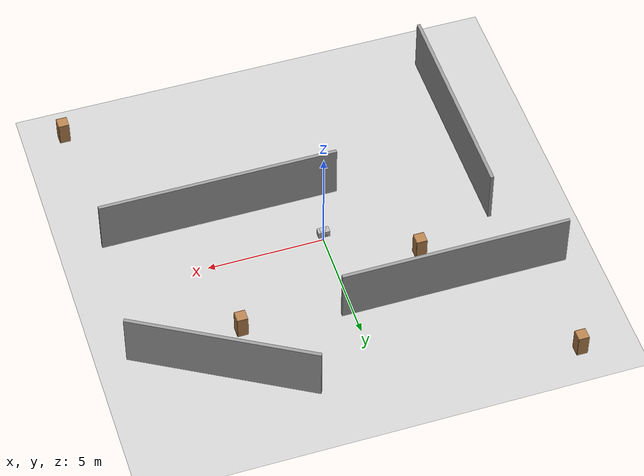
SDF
<sdf version="1.6">
 <world name="default">
  <light name="sun" type="directional">
   <pose>0 0 10 0 -0 0</pose>
   <diffuse>0.8 0.8 0.8 1</diffuse>
   <specular>0.2 0.2 0.2 1</specular>
   <attenuation>
    <range>1000</range>
    <constant>0.9</constant>
    <linear>0.01</linear>
    <quadratic>0.001</quadratic>
   </attenuation>
   <direction>-0.5 0.1 -0.9</direction>
  </light>
  <model name="animated_box">
   <pose>0 0 0.5 0 0 0</pose>
   <link name="link">
    <collision name="animated_box_collision"><geometry><box><size>0.2 0.3 0.3</size></box></geometry></collision>
    <visual name="visual"><geometry><box><size>0.2 0.3 0.3</size></box></geometry></visual>
    <inertial>
     <inertia><ixx>1</ixx><ixy>0</ixy><ixz>0</ixz><iyy>1</iyy><iyz>0</iyz><izz>1</izz></inertia>
     <mass>1</mass>
    </inertial>
    <gravity>0</gravity>
   </link>
   <plugin name="push_animate" filename="libbox_forward_movement15.so"/>
  </model>
  <model name="animated_box2">
   <pose>0 0 0.5 0 0 0</pose>
   <link name="link">
    <collision name="animated_box_collision2"><geometry><box><size>0.3 0.3 0.3</size></box></geometry></collision>
    <visual name="visual"><geometry><box><size>0.3 0.3 0.3</size></box></geometry></visual>
    <inertial>
     <inertia><ixx>1</ixx><ixy>0</ixy><ixz>0</ixz><iyy>1</iyy><iyz>0</iyz><izz>1</izz></inertia>
     <mass>1</mass>
    </inertial>
    <gravity>0</gravity>
   </link>
   <plugin name="push_animate2" filename="libbox_clockwise_movement2.so"/>
  </model>
  <model name="animated_box3">
   <pose>0 0 0.5 0 0 0</pose>
   <link name="link">
    <collision name="animated_box_collision3"><geometry><box><size>0.4 0.2 0.3</size></box></geometry></collision>
    <visual name="visual"><geometry><box><size>0.4 0.2 0.3</size></box></geometry></visual>
    <inertial>
     <inertia><ixx>1</ixx><ixy>0</ixy><ixz>0</ixz><iyy>1</iyy><iyz>0</iyz><izz>1</izz></inertia>
     <mass>1</mass>
    </inertial>
    <gravity>0</gravity>
   </link>
   <plugin name="push_animate3" filename="libbox_clockwise_movement3.so"/>
  </model>
  <model name="animated_box4">
   <pose>0 0 0.5 0 0 0</pose>
   <link name="link">
    <collision name="animated_box_collision4"><geometry><box><size>0.4 0.2 0.3</size></box></geometry></collision>
    <visual name="visual"><geometry><box><size>0.4 0.2 0.3</size></box></geometry></visual>
    <inertial>
     <inertia><ixx>1</ixx><ixy>0</ixy><ixz>0</ixz><iyy>1</iyy><iyz>0</iyz><izz>1</izz></inertia>
     <mass>1</mass>
    </inertial>
    <gravity>0</gravity>
   </link>
   <plugin name="push_animate4" filename="libbox_forward_movement18.so"/>
  </model>
  <model name="animated_box5">
   <pose>0 0 0.5 0 0 0</pose>
   <link name="link">
    <collision name="animated_box_collision5"><geometry><box><size>0.5 0.3 0.3</size></box></geometry></collision>
    <visual name="visual"><geometry><box><size>0.5 0.3 0.3</size></box></geometry></visual>
    <inertial>
     <inertia><ixx>1</ixx><ixy>0</ixy><ixz>0</ixz><iyy>1</iyy><iyz>0</iyz><izz>1</izz></inertia>
     <mass>1</mass>
    </inertial>
    <gravity>0</gravity>
   </link>
   <plugin name="push_animate5" filename="libbox_forward_movement10.so"/>
  </model>
  <model name="ground_plane">
   <static>1</static>
   <link name="link">
    <collision name="collision">
     <geometry><plane><normal>0 0 1</normal><size>100 100</size></plane></geometry>
     <surface><friction><ode><mu>100</mu><mu2>50</mu2></ode></friction></surface>
    </collision>
    <visual name="visual">
     <cast_shadows>0</cast_shadows>
     <geometry><plane><normal>0 0 1</normal><size>100 100</size></plane></geometry>
     <material>
      <script><uri>file://media/materials/scripts/gazebo.material</uri><name>Gazebo/Grey</name></script>
     </material>
    </visual>
   </link>
  </model>
  <gravity>0 0 -9.8</gravity>
  <magnetic_field>6e-06 2.3e-05 -4.2e-05</magnetic_field>
  <atmosphere type="adiabatic"/>
  <physics name="default_physics" default="0" type="ode">
   <max_step_size>0.001</max_step_size>
   <real_time_factor>1</real_time_factor>
   <real_time_update_rate>1000</real_time_update_rate>
  </physics>
  <scene><ambient>0.4 0.4 0.4 1</ambient><background>0.7 0.7 0.7 1</background><shadows>1</shadows></scene>
  <audio><device>default</device></audio>
  <spherical_coordinates>
   <surface_model>EARTH_WGS84</surface_model>
   <latitude_deg>0</latitude_deg>
   <longitude_deg>0</longitude_deg>
   <elevation>0</elevation>
   <heading_deg>0</heading_deg>
  </spherical_coordinates>
  <model name="room6">
   <pose>0.089456 -0.419088 0 0 -0 0</pose>
   <link name="Wall_0">
    <collision name="Wall_0_Collision">
     <geometry><box><size>9.75 0.15 2.5</size></box></geometry>
     <pose>0 0 1.25 0 -0 0</pose>
    </collision>
    <visual name="Wall_0_Visual">
     <pose>0 0 1.25 0 -0 0</pose>
     <geometry><box><size>9.75 0.15 2.5</size></box></geometry>
     <material>
      <script><uri>file://media/materials/scripts/gazebo.material</uri><name>Gazebo/Grey</name></script>
      <ambient>1 1 1 1</ambient>
     </material>
     <meta><layer>0</layer></meta>
    </visual>
    <pose>-4.46887 4.40443 0 0 -0 0</pose>
   </link>
   <link name="Wall_2">
    <collision name="Wall_2_Collision">
     <geometry><box><size>10.25 0.15 2.5</size></box></geometry>
     <pose>0 0 1.25 0 -0 0</pose>
    </collision>
    <visual name="Wall_2_Visual">
     <pose>0 0 1.25 0 -0 0</pose>
     <geometry><box><size>10.25 0.15 2.5</size></box></geometry>
     <material>
      <script><uri>file://media/materials/scripts/gazebo.material</uri><name>Gazebo/Grey</name></script>
      <ambient>1 1 1 1</ambient>
     </material>
     <meta><layer>0</layer></meta>
    </visual>
    <pose>3.67657 -2.04438 0 0 -0 0</pose>
   </link>
   <link name="Wall_4">
    <collision name="Wall_4_Collision">
     <geometry><box><size>9.25 0.15 2.5</size></box></geometry>
     <pose>0 0 1.25 0 -0 0</pose>
    </collision>
    <visual name="Wall_4_Visual">
     <pose>0 0 1.25 0 -0 0</pose>
     <geometry><box><size>9.25 0.15 2.5</size></box></geometry>
     <material>
      <script><uri>file://media/materials/scripts/gazebo.material</uri><name>Gazebo/Grey</name></script>
      <ambient>1 1 1 1</ambient>
     </material>
     <meta><layer>0</layer></meta>
    </visual>
    <pose>-7.13295 -3.30984 0 0 -0 -1.5708</pose>
   </link>
   <link name="Wall_6">
    <collision name="Wall_6_Collision">
     <geometry><box><size>8 0.15 2.5</size></box></geometry>
     <pose>0 0 1.25 0 -0 0</pose>
    </collision>
    <visual name="Wall_6_Visual">
     <pose>0 0 1.25 0 -0 0</pose>
     <geometry><box><size>8 0.15 2.5</size></box></geometry>
     <material>
      <script><uri>file://media/materials/scripts/gazebo.material</uri><name>Gazebo/Grey</name></script>
      <ambient>1 1 1 1</ambient>
     </material>
     <meta><layer>0</layer></meta>
    </visual>
    <pose>5.84227 5.86989 0 0 -0 -0.523599</pose>
   </link>
   <static>1</static>
  </model>
  <model name="cabinet">
   <static>1</static>
   <link name="cabinet_bottom_plate">
    <inertial>
     <pose>0 0 -1 0 -0 0</pose>
     <inertia><ixx>2.05</ixx><ixy>0</ixy><ixz>0</ixz><iyy>2.05</iyy><iyz>0</iyz><izz>2.05</izz></inertia>
     <mass>25</mass>
    </inertial>
    <collision name="cabinet_bottom_plate_geom">
     <pose>0 0 0.01 0 -0 0</pose>
     <geometry><box><size>0.45 0.45 0.02</size></box></geometry>
    </collision>
    <visual name="cabinet_bottom_plate_geom_visual">
     <pose>0 0 0.01 0 -0 0</pose>
     <geometry><box><size>0.45 0.45 0.02</size></box></geometry>
     <material>
      <script><uri>file://media/materials/scripts/gazebo.material</uri><name>Gazebo/Wood</name></script>
     </material>
    </visual>
    <collision name="cabinet_bottom_plate_geom_cabinet_back_plate">
     <pose>0.235 0 0.51 0 -0 0</pose>
     <geometry><box><size>0.02 0.45 1.02</size></box></geometry>
    </collision>
    <visual name="cabinet_bottom_plate_geom_cabinet_back_plate_visual">
     <pose>0.235 0 0.51 0 -0 0</pose>
     <geometry><box><size>0.02 0.45 1.02</size></box></geometry>
     <material>
      <script><uri>file://media/materials/scripts/gazebo.material</uri><name>Gazebo/Wood</name></script>
     </material>
    </visual>
    <collision name="cabinet_bottom_plate_geom_cabinet_left_plate">
     <pose>0 0.235 0.51 0 -0 0</pose>
     <geometry><box><size>0.45 0.02 1.02</size></box></geometry>
    </collision>
    <visual name="cabinet_bottom_plate_geom_cabinet_left_plate_visual">
     <pose>0 0.235 0.51 0 -0 0</pose>
     <geometry><box><size>0.45 0.02 1.02</size></box></geometry>
     <material>
      <script><uri>file://media/materials/scripts/gazebo.material</uri><name>Gazebo/Wood</name></script>
     </material>
    </visual>
    <collision name="cabinet_bottom_plate_geom_cabinet_middle_plate">
     <pose>0 0 0.51 0 -0 0</pose>
     <geometry><box><size>0.45 0.45 0.02</size></box></geometry>
    </collision>
    <visual name="cabinet_bottom_plate_geom_cabinet_middle_plate_visual">
     <pose>0 0 0.51 0 -0 0</pose>
     <geometry><box><size>0.45 0.45 0.02</size></box></geometry>
     <material>
      <script><uri>file://media/materials/scripts/gazebo.material</uri><name>Gazebo/Wood</name></script>
     </material>
    </visual>
    <collision name="cabinet_bottom_plate_geom_cabinet_right_plate">
     <pose>0 -0.235 0.51 0 -0 0</pose>
     <geometry><box><size>0.45 0.02 1.02</size></box></geometry>
    </collision>
    <visual name="cabinet_bottom_plate_geom_cabinet_right_plate_visual">
     <pose>0 -0.235 0.51 0 -0 0</pose>
     <geometry><box><size>0.45 0.02 1.02</size></box></geometry>
     <material>
      <script><uri>file://media/materials/scripts/gazebo.material</uri><name>Gazebo/Wood</name></script>
     </material>
    </visual>
    <collision name="cabinet_bottom_plate_geom_cabinet_top_plate">
     <pose>0 0 1.01 0 -0 0</pose>
     <geometry><box><size>0.45 0.45 0.02</size></box></geometry>
    </collision>
    <visual name="cabinet_bottom_plate_geom_cabinet_top_plate_visual">
     <pose>0 0 1.01 0 -0 0</pose>
     <geometry><box><size>0.45 0.45 0.02</size></box></geometry>
     <material>
      <script><uri>file://media/materials/scripts/gazebo.material</uri><name>Gazebo/Wood</name></script>
     </material>
    </visual>
   </link>
   <pose>8.90459 -8.82736 0 0 -0 0</pose>
  </model>
  <model name="cabinet_0">
   <static>1</static>
   <link name="cabinet_bottom_plate">
    <inertial>
     <pose>0 0 -1 0 -0 0</pose>
     <inertia><ixx>2.05</ixx><ixy>0</ixy><ixz>0</ixz><iyy>2.05</iyy><iyz>0</iyz><izz>2.05</izz></inertia>
     <mass>25</mass>
    </inertial>
    <collision name="cabinet_bottom_plate_geom">
     <pose>0 0 0.01 0 -0 0</pose>
     <geometry><box><size>0.45 0.45 0.02</size></box></geometry>
    </collision>
    <visual name="cabinet_bottom_plate_geom_visual">
     <pose>0 0 0.01 0 -0 0</pose>
     <geometry><box><size>0.45 0.45 0.02</size></box></geometry>
     <material>
      <script><uri>file://media/materials/scripts/gazebo.material</uri><name>Gazebo/Wood</name></script>
     </material>
    </visual>
    <collision name="cabinet_bottom_plate_geom_cabinet_back_plate">
     <pose>0.235 0 0.51 0 -0 0</pose>
     <geometry><box><size>0.02 0.45 1.02</size></box></geometry>
    </collision>
    <visual name="cabinet_bottom_plate_geom_cabinet_back_plate_visual">
     <pose>0.235 0 0.51 0 -0 0</pose>
     <geometry><box><size>0.02 0.45 1.02</size></box></geometry>
     <material>
      <script><uri>file://media/materials/scripts/gazebo.material</uri><name>Gazebo/Wood</name></script>
     </material>
    </visual>
    <collision name="cabinet_bottom_plate_geom_cabinet_left_plate">
     <pose>0 0.235 0.51 0 -0 0</pose>
     <geometry><box><size>0.45 0.02 1.02</size></box></geometry>
    </collision>
    <visual name="cabinet_bottom_plate_geom_cabinet_left_plate_visual">
     <pose>0 0.235 0.51 0 -0 0</pose>
     <geometry><box><size>0.45 0.02 1.02</size></box></geometry>
     <material>
      <script><uri>file://media/materials/scripts/gazebo.material</uri><name>Gazebo/Wood</name></script>
     </material>
    </visual>
    <collision name="cabinet_bottom_plate_geom_cabinet_middle_plate">
     <pose>0 0 0.51 0 -0 0</pose>
     <geometry><box><size>0.45 0.45 0.02</size></box></geometry>
    </collision>
    <visual name="cabinet_bottom_plate_geom_cabinet_middle_plate_visual">
     <pose>0 0 0.51 0 -0 0</pose>
     <geometry><box><size>0.45 0.45 0.02</size></box></geometry>
     <material>
      <script><uri>file://media/materials/scripts/gazebo.material</uri><name>Gazebo/Wood</name></script>
     </material>
    </visual>
    <collision name="cabinet_bottom_plate_geom_cabinet_right_plate">
     <pose>0 -0.235 0.51 0 -0 0</pose>
     <geometry><box><size>0.45 0.02 1.02</size></box></geometry>
    </collision>
    <visual name="cabinet_bottom_plate_geom_cabinet_right_plate_visual">
     <pose>0 -0.235 0.51 0 -0 0</pose>
     <geometry><box><size>0.45 0.02 1.02</size></box></geometry>
     <material>
      <script><uri>file://media/materials/scripts/gazebo.material</uri><name>Gazebo/Wood</name></script>
     </material>
    </visual>
    <collision name="cabinet_bottom_plate_geom_cabinet_top_plate">
     <pose>0 0 1.01 0 -0 0</pose>
     <geometry><box><size>0.45 0.45 0.02</size></box></geometry>
    </collision>
    <visual name="cabinet_bottom_plate_geom_cabinet_top_plate_visual">
     <pose>0 0 1.01 0 -0 0</pose>
     <geometry><box><size>0.45 0.45 0.02</size></box></geometry>
     <material>
      <script><uri>file://media/materials/scripts/gazebo.material</uri><name>Gazebo/Wood</name></script>
     </material>
    </visual>
   </link>
   <pose>-3.59256 1.89979 0 0 -0 0</pose>
  </model>
  <model name="cabinet_1">
   <static>1</static>
   <link name="cabinet_bottom_plate">
    <inertial>
     <pose>0 0 -1 0 -0 0</pose>
     <inertia><ixx>2.05</ixx><ixy>0</ixy><ixz>0</ixz><iyy>2.05</iyy><iyz>0</iyz><izz>2.05</izz></inertia>
     <mass>25</mass>
    </inertial>
    <collision name="cabinet_bottom_plate_geom">
     <pose>0 0 0.01 0 -0 0</pose>
     <geometry><box><size>0.45 0.45 0.02</size></box></geometry>
    </collision>
    <visual name="cabinet_bottom_plate_geom_visual">
     <pose>0 0 0.01 0 -0 0</pose>
     <geometry><box><size>0.45 0.45 0.02</size></box></geometry>
     <material>
      <script><uri>file://media/materials/scripts/gazebo.material</uri><name>Gazebo/Wood</name></script>
     </material>
    </visual>
    <collision name="cabinet_bottom_plate_geom_cabinet_back_plate">
     <pose>0.235 0 0.51 0 -0 0</pose>
     <geometry><box><size>0.02 0.45 1.02</size></box></geometry>
    </collision>
    <visual name="cabinet_bottom_plate_geom_cabinet_back_plate_visual">
     <pose>0.235 0 0.51 0 -0 0</pose>
     <geometry><box><size>0.02 0.45 1.02</size></box></geometry>
     <material>
      <script><uri>file://media/materials/scripts/gazebo.material</uri><name>Gazebo/Wood</name></script>
     </material>
    </visual>
    <collision name="cabinet_bottom_plate_geom_cabinet_left_plate">
     <pose>0 0.235 0.51 0 -0 0</pose>
     <geometry><box><size>0.45 0.02 1.02</size></box></geometry>
    </collision>
    <visual name="cabinet_bottom_plate_geom_cabinet_left_plate_visual">
     <pose>0 0.235 0.51 0 -0 0</pose>
     <geometry><box><size>0.45 0.02 1.02</size></box></geometry>
     <material>
      <script><uri>file://media/materials/scripts/gazebo.material</uri><name>Gazebo/Wood</name></script>
     </material>
    </visual>
    <collision name="cabinet_bottom_plate_geom_cabinet_middle_plate">
     <pose>0 0 0.51 0 -0 0</pose>
     <geometry><box><size>0.45 0.45 0.02</size></box></geometry>
    </collision>
    <visual name="cabinet_bottom_plate_geom_cabinet_middle_plate_visual">
     <pose>0 0 0.51 0 -0 0</pose>
     <geometry><box><size>0.45 0.45 0.02</size></box></geometry>
     <material>
      <script><uri>file://media/materials/scripts/gazebo.material</uri><name>Gazebo/Wood</name></script>
     </material>
    </visual>
    <collision name="cabinet_bottom_plate_geom_cabinet_right_plate">
     <pose>0 -0.235 0.51 0 -0 0</pose>
     <geometry><box><size>0.45 0.02 1.02</size></box></geometry>
    </collision>
    <visual name="cabinet_bottom_plate_geom_cabinet_right_plate_visual">
     <pose>0 -0.235 0.51 0 -0 0</pose>
     <geometry><box><size>0.45 0.02 1.02</size></box></geometry>
     <material>
      <script><uri>file://media/materials/scripts/gazebo.material</uri><name>Gazebo/Wood</name></script>
     </material>
    </visual>
    <collision name="cabinet_bottom_plate_geom_cabinet_top_plate">
     <pose>0 0 1.01 0 -0 0</pose>
     <geometry><box><size>0.45 0.45 0.02</size></box></geometry>
    </collision>
    <visual name="cabinet_bottom_plate_geom_cabinet_top_plate_visual">
     <pose>0 0 1.01 0 -0 0</pose>
     <geometry><box><size>0.45 0.45 0.02</size></box></geometry>
     <material>
      <script><uri>file://media/materials/scripts/gazebo.material</uri><name>Gazebo/Wood</name></script>
     </material>
    </visual>
   </link>
   <pose>-8.10582 8.58785 0 0 -0 0</pose>
  </model>
  <model name="cabinet_2">
   <static>1</static>
   <link name="cabinet_bottom_plate">
    <inertial>
     <pose>0 0 -1 0 -0 0</pose>
     <inertia><ixx>2.05</ixx><ixy>0</ixy><ixz>0</ixz><iyy>2.05</iyy><iyz>0</iyz><izz>2.05</izz></inertia>
     <mass>25</mass>
    </inertial>
    <collision name="cabinet_bottom_plate_geom">
     <pose>0 0 0.01 0 -0 0</pose>
     <geometry><box><size>0.45 0.45 0.02</size></box></geometry>
    </collision>
    <visual name="cabinet_bottom_plate_geom_visual">
     <pose>0 0 0.01 0 -0 0</pose>
     <geometry><box><size>0.45 0.45 0.02</size></box></geometry>
     <material>
      <script><uri>file://media/materials/scripts/gazebo.material</uri><name>Gazebo/Wood</name></script>
     </material>
    </visual>
    <collision name="cabinet_bottom_plate_geom_cabinet_back_plate">
     <pose>0.235 0 0.51 0 -0 0</pose>
     <geometry><box><size>0.02 0.45 1.02</size></box></geometry>
    </collision>
    <visual name="cabinet_bottom_plate_geom_cabinet_back_plate_visual">
     <pose>0.235 0 0.51 0 -0 0</pose>
     <geometry><box><size>0.02 0.45 1.02</size></box></geometry>
     <material>
      <script><uri>file://media/materials/scripts/gazebo.material</uri><name>Gazebo/Wood</name></script>
     </material>
    </visual>
    <collision name="cabinet_bottom_plate_geom_cabinet_left_plate">
     <pose>0 0.235 0.51 0 -0 0</pose>
     <geometry><box><size>0.45 0.02 1.02</size></box></geometry>
    </collision>
    <visual name="cabinet_bottom_plate_geom_cabinet_left_plate_visual">
     <pose>0 0.235 0.51 0 -0 0</pose>
     <geometry><box><size>0.45 0.02 1.02</size></box></geometry>
     <material>
      <script><uri>file://media/materials/scripts/gazebo.material</uri><name>Gazebo/Wood</name></script>
     </material>
    </visual>
    <collision name="cabinet_bottom_plate_geom_cabinet_middle_plate">
     <pose>0 0 0.51 0 -0 0</pose>
     <geometry><box><size>0.45 0.45 0.02</size></box></geometry>
    </collision>
    <visual name="cabinet_bottom_plate_geom_cabinet_middle_plate_visual">
     <pose>0 0 0.51 0 -0 0</pose>
     <geometry><box><size>0.45 0.45 0.02</size></box></geometry>
     <material>
      <script><uri>file://media/materials/scripts/gazebo.material</uri><name>Gazebo/Wood</name></script>
     </material>
    </visual>
    <collision name="cabinet_bottom_plate_geom_cabinet_right_plate">
     <pose>0 -0.235 0.51 0 -0 0</pose>
     <geometry><box><size>0.45 0.02 1.02</size></box></geometry>
    </collision>
    <visual name="cabinet_bottom_plate_geom_cabinet_right_plate_visual">
     <pose>0 -0.235 0.51 0 -0 0</pose>
     <geometry><box><size>0.45 0.02 1.02</size></box></geometry>
     <material>
      <script><uri>file://media/materials/scripts/gazebo.material</uri><name>Gazebo/Wood</name></script>
     </material>
    </visual>
    <collision name="cabinet_bottom_plate_geom_cabinet_top_plate">
     <pose>0 0 1.01 0 -0 0</pose>
     <geometry><box><size>0.45 0.45 0.02</size></box></geometry>
    </collision>
    <visual name="cabinet_bottom_plate_geom_cabinet_top_plate_visual">
     <pose>0 0 1.01 0 -0 0</pose>
     <geometry><box><size>0.45 0.45 0.02</size></box></geometry>
     <material>
      <script><uri>file://media/materials/scripts/gazebo.material</uri><name>Gazebo/Wood</name></script>
     </material>
    </visual>
   </link>
   <pose>4.61928 3.54613 0 0 -0 0</pose>
  </model>
 </world>
</sdf>
